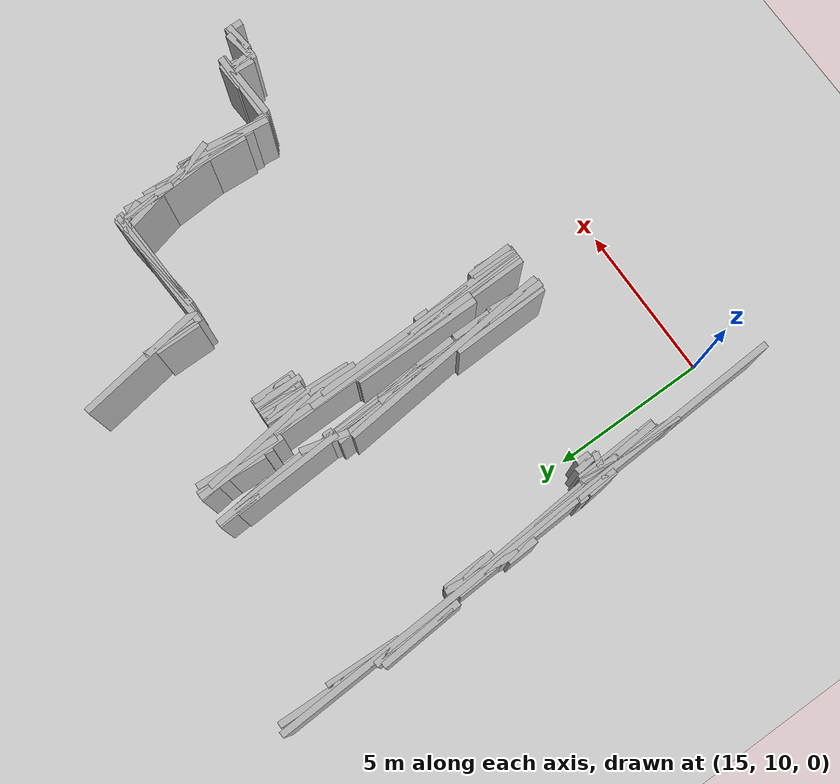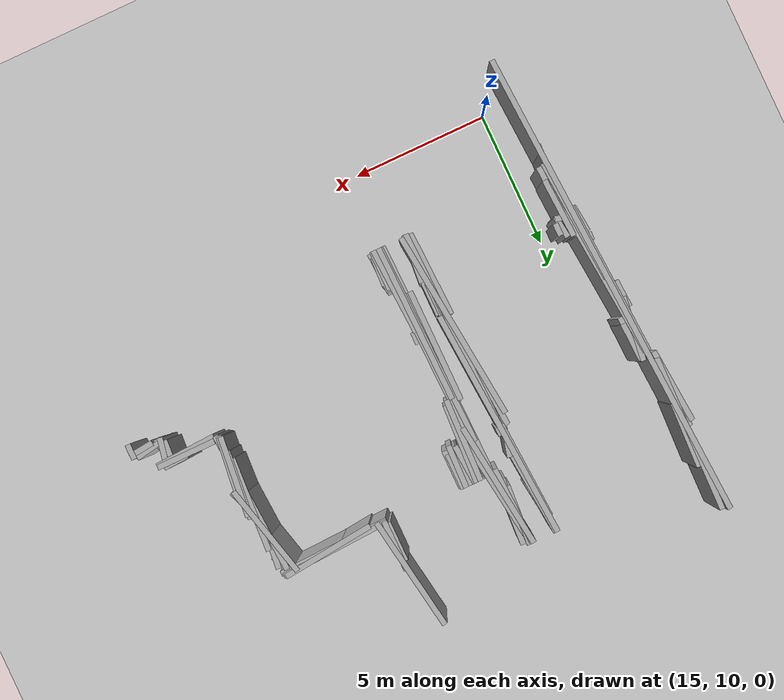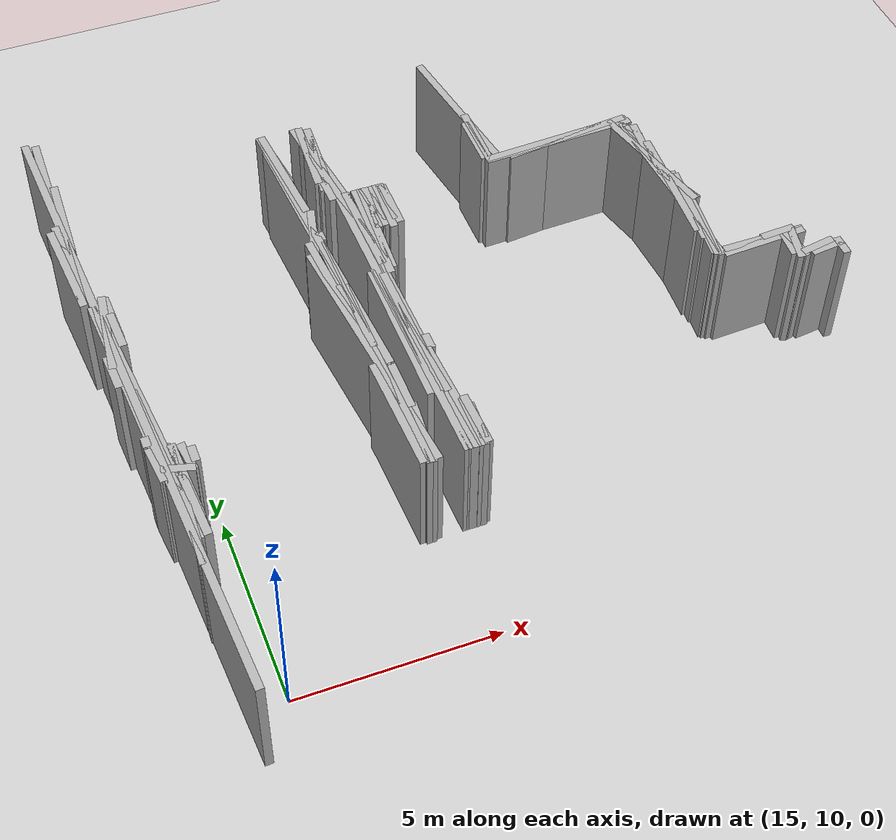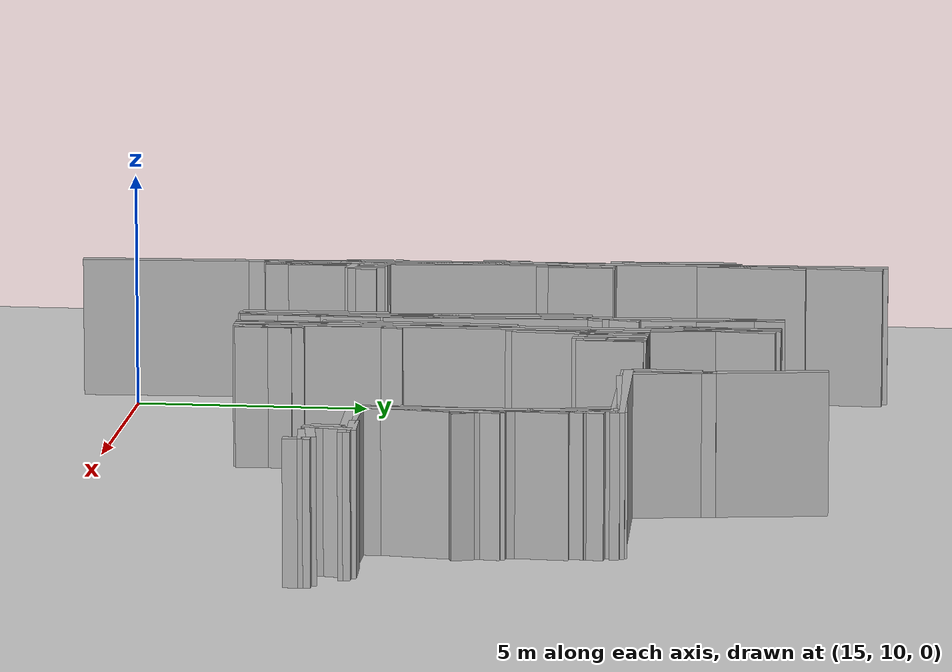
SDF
<sdf version="1.6">
 <world name="aboureyhan">
  <model name="ground_plane">
   <static>true</static>
   <link name="link">
    <collision name="collision">
     <geometry><plane><normal>0 0 1</normal><size>100 100</size></plane></geometry>
    </collision>
    <visual name="visual">
     <geometry><plane><normal>0 0 1</normal><size>500 500</size></plane></geometry>
     <material>
      <ambient>0.8 0.8 0.8 1</ambient>
      <diffuse>0.8 0.8 0.8 1</diffuse>
      <specular>0.8 0.8 0.8 1</specular>
     </material>
    </visual>
   </link>
  </model>
  <model name="wall_7">
   <static>true</static>
   <pose>13.700000000000001 17.4 1.5 0 0 -1.5191182423124665</pose>
   <link name="link">
    <collision name="collision">
     <geometry><box><size>17.423260314877915 0.2 3.0</size></box></geometry>
    </collision>
    <visual name="visual">
     <geometry><box><size>17.423260314877915 0.2 3.0</size></box></geometry>
     <material><ambient>0.5 0.5 0.5 1</ambient><diffuse>0.7 0.7 0.7 1</diffuse></material>
    </visual>
   </link>
  </model>
  <model name="wall_23">
   <static>true</static>
   <pose>14.200000000000001 14.275000000000002 1.5 0 0 -1.5243181954438947</pose>
   <link name="link">
    <collision name="collision"><geometry><box><size>2.152324325003087 0.2 3.0</size></box></geometry></collision>
    <visual name="visual">
     <geometry><box><size>2.152324325003087 0.2 3.0</size></box></geometry>
     <material><ambient>0.5 0.5 0.5 1</ambient><diffuse>0.7 0.7 0.7 1</diffuse></material>
    </visual>
   </link>
  </model>
  <model name="wall_43">
   <static>true</static>
   <pose>19.200000000000003 16.375 1.5 0 0 -1.4704154237119258</pose>
   <link name="link">
    <collision name="collision"><geometry><box><size>6.98516284706377 0.2 3.0</size></box></geometry></collision>
    <visual name="visual">
     <geometry><box><size>6.98516284706377 0.2 3.0</size></box></geometry>
     <material><ambient>0.5 0.5 0.5 1</ambient><diffuse>0.7 0.7 0.7 1</diffuse></material>
    </visual>
   </link>
  </model>
  <model name="wall_60">
   <static>true</static>
   <pose>20.125 22.0 1.5 0 0 -1.4517960334121165</pose>
   <link name="link">
    <collision name="collision"><geometry><box><size>4.632763753959395 0.2 3.0</size></box></geometry></collision>
    <visual name="visual">
     <geometry><box><size>4.632763753959395 0.2 3.0</size></box></geometry>
     <material><ambient>0.5 0.5 0.5 1</ambient><diffuse>0.7 0.7 0.7 1</diffuse></material>
    </visual>
   </link>
  </model>
  <model name="wall_64">
   <static>true</static>
   <pose>13.875000000000002 19.5 1.5 0 0 -1.5350972141155723</pose>
   <link name="link">
    <collision name="collision">
     <geometry><box><size>1.4008925726121957 0.2 3.0</size></box></geometry>
    </collision>
    <visual name="visual">
     <geometry><box><size>1.4008925726121957 0.2 3.0</size></box></geometry>
     <material><ambient>0.5 0.5 0.5 1</ambient><diffuse>0.7 0.7 0.7 1</diffuse></material>
    </visual>
   </link>
  </model>
  <model name="wall_68">
   <static>true</static>
   <pose>24.125 23.474999999999998 1.5 0 0 -1.415432072943363</pose>
   <link name="link">
    <collision name="collision"><geometry><box><size>4.200595195921644 0.2 3.0</size></box></geometry></collision>
    <visual name="visual">
     <geometry><box><size>4.200595195921644 0.2 3.0</size></box></geometry>
     <material><ambient>0.5 0.5 0.5 1</ambient><diffuse>0.7 0.7 0.7 1</diffuse></material>
    </visual>
   </link>
  </model>
  <model name="wall_70">
   <static>true</static>
   <pose>14.200000000000001 13.575000000000003 1.5 0 0 -1.5137155443886332</pose>
   <link name="link">
    <collision name="collision">
     <geometry><box><size>1.7528548142958102 0.2 3.0</size></box></geometry>
    </collision>
    <visual name="visual">
     <geometry><box><size>1.7528548142958102 0.2 3.0</size></box></geometry>
     <material><ambient>0.5 0.5 0.5 1</ambient><diffuse>0.7 0.7 0.7 1</diffuse></material>
    </visual>
   </link>
  </model>
  <model name="wall_71">
   <static>true</static>
   <pose>20.05 16.75 1.5 0 0 1.5707963267948966</pose>
   <link name="link">
    <collision name="collision"><geometry><box><size>4.099999999999994 0.2 3.0</size></box></geometry></collision>
    <visual name="visual">
     <geometry><box><size>4.099999999999994 0.2 3.0</size></box></geometry>
     <material><ambient>0.5 0.5 0.5 1</ambient><diffuse>0.7 0.7 0.7 1</diffuse></material>
    </visual>
   </link>
  </model>
  <model name="wall_74">
   <static>true</static>
   <pose>20.25 20.95 1.5 0 0 -1.5707963267948966</pose>
   <link name="link">
    <collision name="collision">
     <geometry><box><size>1.3000000000000043 0.2 3.0</size></box></geometry>
    </collision>
    <visual name="visual">
     <geometry><box><size>1.3000000000000043 0.2 3.0</size></box></geometry>
     <material><ambient>0.5 0.5 0.5 1</ambient><diffuse>0.7 0.7 0.7 1</diffuse></material>
    </visual>
   </link>
  </model>
  <model name="wall_75">
   <static>true</static>
   <pose>19.225 20.099999999999998 1.5 0 0 -1.5054134647160544</pose>
   <link name="link">
    <collision name="collision"><geometry><box><size>8.417986695166485 0.2 3.0</size></box></geometry></collision>
    <visual name="visual">
     <geometry><box><size>8.417986695166485 0.2 3.0</size></box></geometry>
     <material><ambient>0.5 0.5 0.5 1</ambient><diffuse>0.7 0.7 0.7 1</diffuse></material>
    </visual>
   </link>
  </model>
  <model name="wall_104">
   <static>true</static>
   <pose>20.35 15.774999999999999 1.5 0 0 -1.5534067755055658</pose>
   <link name="link">
    <collision name="collision">
     <geometry><box><size>5.7508694994757095 0.2 3.0</size></box></geometry>
    </collision>
    <visual name="visual">
     <geometry><box><size>5.7508694994757095 0.2 3.0</size></box></geometry>
     <material><ambient>0.5 0.5 0.5 1</ambient><diffuse>0.7 0.7 0.7 1</diffuse></material>
    </visual>
   </link>
  </model>
  <model name="wall_111">
   <static>true</static>
   <pose>28.025000000000002 20.05 1.5 0 0 -1.3258176636680319</pose>
   <link name="link">
    <collision name="collision"><geometry><box><size>3.50463978177501 0.2 3.0</size></box></geometry></collision>
    <visual name="visual">
     <geometry><box><size>3.50463978177501 0.2 3.0</size></box></geometry>
     <material><ambient>0.5 0.5 0.5 1</ambient><diffuse>0.7 0.7 0.7 1</diffuse></material>
    </visual>
   </link>
  </model>
  <model name="wall_120">
   <static>true</static>
   <pose>20.525000000000002 14.474999999999998 1.5 0 0 -1.5232132235179137</pose>
   <link name="link">
    <collision name="collision">
     <geometry><box><size>3.1535694062442943 0.2 3.0</size></box></geometry>
    </collision>
    <visual name="visual">
     <geometry><box><size>3.1535694062442943 0.2 3.0</size></box></geometry>
     <material><ambient>0.5 0.5 0.5 1</ambient><diffuse>0.7 0.7 0.7 1</diffuse></material>
    </visual>
   </link>
  </model>
  <model name="wall_136">
   <static>true</static>
   <pose>20.275000000000002 16.599999999999998 1.5 0 0 -1.5505288320826753</pose>
   <link name="link">
    <collision name="collision"><geometry><box><size>7.401520114138715 0.2 3.0</size></box></geometry></collision>
    <visual name="visual">
     <geometry><box><size>7.401520114138715 0.2 3.0</size></box></geometry>
     <material><ambient>0.5 0.5 0.5 1</ambient><diffuse>0.7 0.7 0.7 1</diffuse></material>
    </visual>
   </link>
  </model>
  <model name="wall_137">
   <static>true</static>
   <pose>13.65 17.2 1.5 0 0 -1.5172760583355813</pose>
   <link name="link">
    <collision name="collision"><geometry><box><size>5.608029957123983 0.2 3.0</size></box></geometry></collision>
    <visual name="visual">
     <geometry><box><size>5.608029957123983 0.2 3.0</size></box></geometry>
     <material><ambient>0.5 0.5 0.5 1</ambient><diffuse>0.7 0.7 0.7 1</diffuse></material>
    </visual>
   </link>
  </model>
  <model name="wall_141">
   <static>true</static>
   <pose>13.425 23.175 1.5 0 0 1.5442538890434996</pose>
   <link name="link">
    <collision name="collision"><geometry><box><size>5.651990799709425 0.2 3.0</size></box></geometry></collision>
    <visual name="visual">
     <geometry><box><size>5.651990799709425 0.2 3.0</size></box></geometry>
     <material><ambient>0.5 0.5 0.5 1</ambient><diffuse>0.7 0.7 0.7 1</diffuse></material>
    </visual>
   </link>
  </model>
  <model name="wall_153">
   <static>true</static>
   <pose>28.200000000000003 17.900000000000002 1.5 0 0 1.4677147182721972</pose>
   <link name="link">
    <collision name="collision">
     <geometry><box><size>2.9154759474226486 0.2 3.0</size></box></geometry>
    </collision>
    <visual name="visual">
     <geometry><box><size>2.9154759474226486 0.2 3.0</size></box></geometry>
     <material><ambient>0.5 0.5 0.5 1</ambient><diffuse>0.7 0.7 0.7 1</diffuse></material>
    </visual>
   </link>
  </model>
  <model name="wall_165">
   <static>true</static>
   <pose>19.275000000000002 16.5 1.5 0 0 -1.5502512727614965</pose>
   <link name="link">
    <collision name="collision"><geometry><box><size>7.301540933255113 0.2 3.0</size></box></geometry></collision>
    <visual name="visual">
     <geometry><box><size>7.301540933255113 0.2 3.0</size></box></geometry>
     <material><ambient>0.5 0.5 0.5 1</ambient><diffuse>0.7 0.7 0.7 1</diffuse></material>
    </visual>
   </link>
  </model>
  <model name="wall_169">
   <static>true</static>
   <pose>19.950000000000003 22.875 1.5 0 0 -1.5357229962616719</pose>
   <link name="link">
    <collision name="collision">
     <geometry><box><size>2.8517538463198338 0.2 3.0</size></box></geometry>
    </collision>
    <visual name="visual">
     <geometry><box><size>2.8517538463198338 0.2 3.0</size></box></geometry>
     <material><ambient>0.5 0.5 0.5 1</ambient><diffuse>0.7 0.7 0.7 1</diffuse></material>
    </visual>
   </link>
  </model>
  <model name="wall_201">
   <static>true</static>
   <pose>20.85 20.875 1.5 0 0 -1.501939837493851</pose>
   <link name="link">
    <collision name="collision"><geometry><box><size>1.453444185374866 0.2 3.0</size></box></geometry></collision>
    <visual name="visual">
     <geometry><box><size>1.453444185374866 0.2 3.0</size></box></geometry>
     <material><ambient>0.5 0.5 0.5 1</ambient><diffuse>0.7 0.7 0.7 1</diffuse></material>
    </visual>
   </link>
  </model>
  <model name="wall_209">
   <static>true</static>
   <pose>13.55 23.174999999999997 1.5 0 0 1.5282687921751117</pose>
   <link name="link">
    <collision name="collision">
     <geometry><box><size>2.3521266972678094 0.2 3.0</size></box></geometry>
    </collision>
    <visual name="visual">
     <geometry><box><size>2.3521266972678094 0.2 3.0</size></box></geometry>
     <material><ambient>0.5 0.5 0.5 1</ambient><diffuse>0.7 0.7 0.7 1</diffuse></material>
    </visual>
   </link>
  </model>
  <model name="wall_225">
   <static>true</static>
   <pose>28.175000000000004 18.225 1.5 0 0 1.4691074750318196</pose>
   <link name="link">
    <collision name="collision"><geometry><box><size>2.462722071204953 0.2 3.0</size></box></geometry></collision>
    <visual name="visual">
     <geometry><box><size>2.462722071204953 0.2 3.0</size></box></geometry>
     <material><ambient>0.5 0.5 0.5 1</ambient><diffuse>0.7 0.7 0.7 1</diffuse></material>
    </visual>
   </link>
  </model>
  <model name="wall_231">
   <static>true</static>
   <pose>20.55 20.1 1.5 0 0 1.537475330916649</pose>
   <link name="link">
    <collision name="collision">
     <geometry><box><size>3.0016662039607267 0.2 3.0</size></box></geometry>
    </collision>
    <visual name="visual">
     <geometry><box><size>3.0016662039607267 0.2 3.0</size></box></geometry>
     <material><ambient>0.5 0.5 0.5 1</ambient><diffuse>0.7 0.7 0.7 1</diffuse></material>
    </visual>
   </link>
  </model>
  <model name="wall_238">
   <static>true</static>
   <pose>20.650000000000002 13.625 1.5 0 0 1.5707963267948966</pose>
   <link name="link">
    <collision name="collision">
     <geometry><box><size>1.4500000000000028 0.2 3.0</size></box></geometry>
    </collision>
    <visual name="visual">
     <geometry><box><size>1.4500000000000028 0.2 3.0</size></box></geometry>
     <material><ambient>0.5 0.5 0.5 1</ambient><diffuse>0.7 0.7 0.7 1</diffuse></material>
    </visual>
   </link>
  </model>
  <model name="wall_240">
   <static>true</static>
   <pose>19.150000000000002 14.45 1.5 0 0 -1.5385494443596424</pose>
   <link name="link">
    <collision name="collision"><geometry><box><size>3.101612483854166 0.2 3.0</size></box></geometry></collision>
    <visual name="visual">
     <geometry><box><size>3.101612483854166 0.2 3.0</size></box></geometry>
     <material><ambient>0.5 0.5 0.5 1</ambient><diffuse>0.7 0.7 0.7 1</diffuse></material>
    </visual>
   </link>
  </model>
  <model name="wall_249">
   <static>true</static>
   <pose>13.9 14.899999999999999 1.5 0 0 -1.5042281630190726</pose>
   <link name="link">
    <collision name="collision"><geometry><box><size>4.509988913511872 0.2 3.0</size></box></geometry></collision>
    <visual name="visual">
     <geometry><box><size>4.509988913511872 0.2 3.0</size></box></geometry>
     <material><ambient>0.5 0.5 0.5 1</ambient><diffuse>0.7 0.7 0.7 1</diffuse></material>
    </visual>
   </link>
  </model>
  <model name="wall_251">
   <static>true</static>
   <pose>13.900000000000002 16.35 1.5 0 0 -1.488788881268711</pose>
   <link name="link">
    <collision name="collision"><geometry><box><size>7.324616030891992 0.2 3.0</size></box></geometry></collision>
    <visual name="visual">
     <geometry><box><size>7.324616030891992 0.2 3.0</size></box></geometry>
     <material><ambient>0.5 0.5 0.5 1</ambient><diffuse>0.7 0.7 0.7 1</diffuse></material>
    </visual>
   </link>
  </model>
  <model name="wall_283">
   <static>true</static>
   <pose>26.375000000000004 21.575 1.5 0 0 0.10409993810959972</pose>
   <link name="link">
    <collision name="collision">
     <geometry><box><size>3.3682339586198595 0.2 3.0</size></box></geometry>
    </collision>
    <visual name="visual">
     <geometry><box><size>3.3682339586198595 0.2 3.0</size></box></geometry>
     <material><ambient>0.5 0.5 0.5 1</ambient><diffuse>0.7 0.7 0.7 1</diffuse></material>
    </visual>
   </link>
  </model>
  <model name="wall_285">
   <static>true</static>
   <pose>28.1 19.0 1.5 0 0 1.5120405040791731</pose>
   <link name="link">
    <collision name="collision">
     <geometry><box><size>3.4058772731852858 0.2 3.0</size></box></geometry>
    </collision>
    <visual name="visual">
     <geometry><box><size>3.4058772731852858 0.2 3.0</size></box></geometry>
     <material><ambient>0.5 0.5 0.5 1</ambient><diffuse>0.7 0.7 0.7 1</diffuse></material>
    </visual>
   </link>
  </model>
  <model name="wall_308">
   <static>true</static>
   <pose>13.475000000000001 17.85 1.5 0 0 -1.5208379310729567</pose>
   <link name="link">
    <collision name="collision"><geometry><box><size>1.001249219725039 0.2 3.0</size></box></geometry></collision>
    <visual name="visual">
     <geometry><box><size>1.001249219725039 0.2 3.0</size></box></geometry>
     <material><ambient>0.5 0.5 0.5 1</ambient><diffuse>0.7 0.7 0.7 1</diffuse></material>
    </visual>
   </link>
  </model>
  <model name="wall_314">
   <static>true</static>
   <pose>21.125 20.825 1.5 0 0 1.5385494443596424</pose>
   <link name="link">
    <collision name="collision">
     <geometry><box><size>1.5508062419270865 0.2 3.0</size></box></geometry>
    </collision>
    <visual name="visual">
     <geometry><box><size>1.5508062419270865 0.2 3.0</size></box></geometry>
     <material><ambient>0.5 0.5 0.5 1</ambient><diffuse>0.7 0.7 0.7 1</diffuse></material>
    </visual>
   </link>
  </model>
  <model name="wall_315">
   <static>true</static>
   <pose>19.925 23.224999999999998 1.5 0 0 1.5011417530663291</pose>
   <link name="link">
    <collision name="collision"><geometry><box><size>2.155226206225229 0.2 3.0</size></box></geometry></collision>
    <visual name="visual">
     <geometry><box><size>2.155226206225229 0.2 3.0</size></box></geometry>
     <material><ambient>0.5 0.5 0.5 1</ambient><diffuse>0.7 0.7 0.7 1</diffuse></material>
    </visual>
   </link>
  </model>
  <model name="wall_343">
   <static>true</static>
   <pose>28.225 17.425 1.5 0 0 1.4494443262241332</pose>
   <link name="link">
    <collision name="collision">
     <geometry><box><size>2.0651876428063427 0.2 3.0</size></box></geometry>
    </collision>
    <visual name="visual">
     <geometry><box><size>2.0651876428063427 0.2 3.0</size></box></geometry>
     <material><ambient>0.5 0.5 0.5 1</ambient><diffuse>0.7 0.7 0.7 1</diffuse></material>
    </visual>
   </link>
  </model>
  <model name="wall_347">
   <static>true</static>
   <pose>19.125 22.799999999999997 1.5 0 0 -1.4876550949064553</pose>
   <link name="link">
    <collision name="collision"><geometry><box><size>3.010398644698074 0.2 3.0</size></box></geometry></collision>
    <visual name="visual">
     <geometry><box><size>3.010398644698074 0.2 3.0</size></box></geometry>
     <material><ambient>0.5 0.5 0.5 1</ambient><diffuse>0.7 0.7 0.7 1</diffuse></material>
    </visual>
   </link>
  </model>
  <model name="wall_362">
   <static>true</static>
   <pose>19.475 13.725000000000001 1.5 0 0 1.4852910331166929</pose>
   <link name="link">
    <collision name="collision">
     <geometry><box><size>1.7564168070250294 0.2 3.0</size></box></geometry>
    </collision>
    <visual name="visual">
     <geometry><box><size>1.7564168070250294 0.2 3.0</size></box></geometry>
     <material><ambient>0.5 0.5 0.5 1</ambient><diffuse>0.7 0.7 0.7 1</diffuse></material>
    </visual>
   </link>
  </model>
  <model name="wall_367">
   <static>true</static>
   <pose>19.175 20.575 1.5 0 0 1.3339475658479747</pose>
   <link name="link">
    <collision name="collision"><geometry><box><size>1.491643389017626 0.2 3.0</size></box></geometry></collision>
    <visual name="visual">
     <geometry><box><size>1.491643389017626 0.2 3.0</size></box></geometry>
     <material><ambient>0.5 0.5 0.5 1</ambient><diffuse>0.7 0.7 0.7 1</diffuse></material>
    </visual>
   </link>
  </model>
  <model name="wall_381">
   <static>true</static>
   <pose>19.050000000000004 21.925 1.5 0 0 -1.5145177905061349</pose>
   <link name="link">
    <collision name="collision"><geometry><box><size>3.555629339512209 0.2 3.0</size></box></geometry></collision>
    <visual name="visual">
     <geometry><box><size>3.555629339512209 0.2 3.0</size></box></geometry>
     <material><ambient>0.5 0.5 0.5 1</ambient><diffuse>0.7 0.7 0.7 1</diffuse></material>
    </visual>
   </link>
  </model>
  <model name="wall_385">
   <static>true</static>
   <pose>21.25 20.95 1.5 0 0 1.5707963267948966</pose>
   <link name="link">
    <collision name="collision">
     <geometry><box><size>1.3000000000000043 0.2 3.0</size></box></geometry>
    </collision>
    <visual name="visual">
     <geometry><box><size>1.3000000000000043 0.2 3.0</size></box></geometry>
     <material><ambient>0.5 0.5 0.5 1</ambient><diffuse>0.7 0.7 0.7 1</diffuse></material>
    </visual>
   </link>
  </model>
  <model name="wall_405">
   <static>true</static>
   <pose>20.25 22.025 1.5 0 0 -1.4382447944982226</pose>
   <link name="link">
    <collision name="collision"><geometry><box><size>3.783186487605389 0.2 3.0</size></box></geometry></collision>
    <visual name="visual">
     <geometry><box><size>3.783186487605389 0.2 3.0</size></box></geometry>
     <material><ambient>0.5 0.5 0.5 1</ambient><diffuse>0.7 0.7 0.7 1</diffuse></material>
    </visual>
   </link>
  </model>
  <model name="wall_417">
   <static>true</static>
   <pose>24.200000000000003 22.375 1.5 0 0 1.5707963267948966</pose>
   <link name="link">
    <collision name="collision">
     <geometry><box><size>1.8499999999999943 0.2 3.0</size></box></geometry>
    </collision>
    <visual name="visual">
     <geometry><box><size>1.8499999999999943 0.2 3.0</size></box></geometry>
     <material><ambient>0.5 0.5 0.5 1</ambient><diffuse>0.7 0.7 0.7 1</diffuse></material>
    </visual>
   </link>
  </model>
  <model name="wall_419">
   <static>true</static>
   <pose>26.1 21.6 1.5 0 0 0.04995839572194347</pose>
   <link name="link">
    <collision name="collision"><geometry><box><size>4.004996878900157 0.2 3.0</size></box></geometry></collision>
    <visual name="visual">
     <geometry><box><size>4.004996878900157 0.2 3.0</size></box></geometry>
     <material><ambient>0.5 0.5 0.5 1</ambient><diffuse>0.7 0.7 0.7 1</diffuse></material>
    </visual>
   </link>
  </model>
  <model name="wall_421">
   <static>true</static>
   <pose>20.675 20.175 1.5 0 0 1.5182132651839555</pose>
   <link name="link">
    <collision name="collision">
     <geometry><box><size>2.8539446385660683 0.2 3.0</size></box></geometry>
    </collision>
    <visual name="visual">
     <geometry><box><size>2.8539446385660683 0.2 3.0</size></box></geometry>
     <material><ambient>0.5 0.5 0.5 1</ambient><diffuse>0.7 0.7 0.7 1</diffuse></material>
    </visual>
   </link>
  </model>
  <model name="wall_422">
   <static>true</static>
   <pose>28.075 20.625 1.5 0 0 1.4743225516123104</pose>
   <link name="link">
    <collision name="collision">
     <geometry><box><size>1.5572411502397407 0.2 3.0</size></box></geometry>
    </collision>
    <visual name="visual">
     <geometry><box><size>1.5572411502397407 0.2 3.0</size></box></geometry>
     <material><ambient>0.5 0.5 0.5 1</ambient><diffuse>0.7 0.7 0.7 1</diffuse></material>
    </visual>
   </link>
  </model>
  <model name="wall_434">
   <static>true</static>
   <pose>19.050000000000004 18.675 1.5 0 0 -1.507389374828065</pose>
   <link name="link">
    <collision name="collision">
     <geometry><box><size>3.1563428204173243 0.2 3.0</size></box></geometry>
    </collision>
    <visual name="visual">
     <geometry><box><size>3.1563428204173243 0.2 3.0</size></box></geometry>
     <material><ambient>0.5 0.5 0.5 1</ambient><diffuse>0.7 0.7 0.7 1</diffuse></material>
    </visual>
   </link>
  </model>
  <model name="wall_453">
   <static>true</static>
   <pose>19.300000000000004 17.9 1.5 0 0 -1.438244794498223</pose>
   <link name="link">
    <collision name="collision">
     <geometry><box><size>1.5132745950421556 0.2 3.0</size></box></geometry>
    </collision>
    <visual name="visual">
     <geometry><box><size>1.5132745950421556 0.2 3.0</size></box></geometry>
     <material><ambient>0.5 0.5 0.5 1</ambient><diffuse>0.7 0.7 0.7 1</diffuse></material>
    </visual>
   </link>
  </model>
  <model name="wall_465">
   <static>true</static>
   <pose>14.55 14.925 1.5 0 0 -1.5707963267948966</pose>
   <link name="link">
    <collision name="collision">
     <geometry><box><size>0.44999999999999574 0.2 3.0</size></box></geometry>
    </collision>
    <visual name="visual">
     <geometry><box><size>0.44999999999999574 0.2 3.0</size></box></geometry>
     <material><ambient>0.5 0.5 0.5 1</ambient><diffuse>0.7 0.7 0.7 1</diffuse></material>
    </visual>
   </link>
  </model>
  <model name="wall_481">
   <static>true</static>
   <pose>20.200000000000003 18.150000000000002 1.5 0 0 -1.5563045877293968</pose>
   <link name="link">
    <collision name="collision">
     <geometry><box><size>6.9007245996344455 0.2 3.0</size></box></geometry>
    </collision>
    <visual name="visual">
     <geometry><box><size>6.9007245996344455 0.2 3.0</size></box></geometry>
     <material><ambient>0.5 0.5 0.5 1</ambient><diffuse>0.7 0.7 0.7 1</diffuse></material>
    </visual>
   </link>
  </model>
  <model name="wall_502">
   <static>true</static>
   <pose>20.75 20.875 1.5 0 0 -1.5019398374938535</pose>
   <link name="link">
    <collision name="collision"><geometry><box><size>1.453444185374866 0.2 3.0</size></box></geometry></collision>
    <visual name="visual">
     <geometry><box><size>1.453444185374866 0.2 3.0</size></box></geometry>
     <material><ambient>0.5 0.5 0.5 1</ambient><diffuse>0.7 0.7 0.7 1</diffuse></material>
    </visual>
   </link>
  </model>
  <model name="wall_504">
   <static>true</static>
   <pose>30.05 16.1 1.5 0 0 1.37340076694502</pose>
   <link name="link">
    <collision name="collision">
     <geometry><box><size>1.0198039027185561 0.2 3.0</size></box></geometry>
    </collision>
    <visual name="visual">
     <geometry><box><size>1.0198039027185561 0.2 3.0</size></box></geometry>
     <material><ambient>0.5 0.5 0.5 1</ambient><diffuse>0.7 0.7 0.7 1</diffuse></material>
    </visual>
   </link>
  </model>
  <model name="wall_509">
   <static>true</static>
   <pose>20.950000000000003 20.875 1.5 0 0 1.5707963267948966</pose>
   <link name="link">
    <collision name="collision">
     <geometry><box><size>1.4500000000000028 0.2 3.0</size></box></geometry>
    </collision>
    <visual name="visual">
     <geometry><box><size>1.4500000000000028 0.2 3.0</size></box></geometry>
     <material><ambient>0.5 0.5 0.5 1</ambient><diffuse>0.7 0.7 0.7 1</diffuse></material>
    </visual>
   </link>
  </model>
  <model name="wall_511">
   <static>true</static>
   <pose>29.875 16.175 1.5 0 0 1.5120405040791773</pose>
   <link name="link">
    <collision name="collision">
     <geometry><box><size>0.8514693182963213 0.2 3.0</size></box></geometry>
    </collision>
    <visual name="visual">
     <geometry><box><size>0.8514693182963213 0.2 3.0</size></box></geometry>
     <material><ambient>0.5 0.5 0.5 1</ambient><diffuse>0.7 0.7 0.7 1</diffuse></material>
    </visual>
   </link>
  </model>
  <model name="wall_515">
   <static>true</static>
   <pose>13.250000000000002 21.45 1.5 0 0 -1.4968572891369565</pose>
   <link name="link">
    <collision name="collision">
     <geometry><box><size>2.7073972741361723 0.2 3.0</size></box></geometry>
    </collision>
    <visual name="visual">
     <geometry><box><size>2.7073972741361723 0.2 3.0</size></box></geometry>
     <material><ambient>0.5 0.5 0.5 1</ambient><diffuse>0.7 0.7 0.7 1</diffuse></material>
    </visual>
   </link>
  </model>
  <model name="wall_527">
   <static>true</static>
   <pose>13.700000000000001 14.899999999999999 1.5 0 0 -1.4711276743037367</pose>
   <link name="link">
    <collision name="collision">
     <geometry><box><size>1.0049875621120887 0.2 3.0</size></box></geometry>
    </collision>
    <visual name="visual">
     <geometry><box><size>1.0049875621120887 0.2 3.0</size></box></geometry>
     <material><ambient>0.5 0.5 0.5 1</ambient><diffuse>0.7 0.7 0.7 1</diffuse></material>
    </visual>
   </link>
  </model>
  <model name="wall_530">
   <static>true</static>
   <pose>29.375000000000004 16.5 1.5 0 0 0.0</pose>
   <link name="link">
    <collision name="collision">
     <geometry><box><size>2.1499999999999986 0.2 3.0</size></box></geometry>
    </collision>
    <visual name="visual">
     <geometry><box><size>2.1499999999999986 0.2 3.0</size></box></geometry>
     <material><ambient>0.5 0.5 0.5 1</ambient><diffuse>0.7 0.7 0.7 1</diffuse></material>
    </visual>
   </link>
  </model>
  <model name="wall_547">
   <static>true</static>
   <pose>14.125 14.649999999999999 1.5 0 0 -0.2606023917473445</pose>
   <link name="link">
    <collision name="collision">
     <geometry><box><size>0.7762087348130019 0.2 3.0</size></box></geometry>
    </collision>
    <visual name="visual">
     <geometry><box><size>0.7762087348130019 0.2 3.0</size></box></geometry>
     <material><ambient>0.5 0.5 0.5 1</ambient><diffuse>0.7 0.7 0.7 1</diffuse></material>
    </visual>
   </link>
  </model>
  <model name="wall_566">
   <static>true</static>
   <pose>20.200000000000003 15.875 1.5 0 0 -1.553991186279855</pose>
   <link name="link">
    <collision name="collision"><geometry><box><size>5.950840276801254 0.2 3.0</size></box></geometry></collision>
    <visual name="visual">
     <geometry><box><size>5.950840276801254 0.2 3.0</size></box></geometry>
     <material><ambient>0.5 0.5 0.5 1</ambient><diffuse>0.7 0.7 0.7 1</diffuse></material>
    </visual>
   </link>
  </model>
  <model name="wall_572">
   <static>true</static>
   <pose>19.400000000000002 15.375 1.5 0 0 1.5707963267948966</pose>
   <link name="link">
    <collision name="collision">
     <geometry><box><size>1.3499999999999943 0.2 3.0</size></box></geometry>
    </collision>
    <visual name="visual">
     <geometry><box><size>1.3499999999999943 0.2 3.0</size></box></geometry>
     <material><ambient>0.5 0.5 0.5 1</ambient><diffuse>0.7 0.7 0.7 1</diffuse></material>
    </visual>
   </link>
  </model>
  <model name="wall_601">
   <static>true</static>
   <pose>20.55 16.225 1.5 0 0 -1.5707963267948966</pose>
   <link name="link">
    <collision name="collision">
     <geometry><box><size>0.45000000000000284 0.2 3.0</size></box></geometry>
    </collision>
    <visual name="visual">
     <geometry><box><size>0.45000000000000284 0.2 3.0</size></box></geometry>
     <material><ambient>0.5 0.5 0.5 1</ambient><diffuse>0.7 0.7 0.7 1</diffuse></material>
    </visual>
   </link>
  </model>
  <model name="wall_625">
   <static>true</static>
   <pose>28.05 18.95 1.5 0 0 -1.5131678993174218</pose>
   <link name="link">
    <collision name="collision"><geometry><box><size>5.208646657242163 0.2 3.0</size></box></geometry></collision>
    <visual name="visual">
     <geometry><box><size>5.208646657242163 0.2 3.0</size></box></geometry>
     <material><ambient>0.5 0.5 0.5 1</ambient><diffuse>0.7 0.7 0.7 1</diffuse></material>
    </visual>
   </link>
  </model>
  <model name="wall_629">
   <static>true</static>
   <pose>20.400000000000002 17.25 1.5 0 0 -1.5515679276951893</pose>
   <link name="link">
    <collision name="collision"><geometry><box><size>5.20096144957834 0.2 3.0</size></box></geometry></collision>
    <visual name="visual">
     <geometry><box><size>5.20096144957834 0.2 3.0</size></box></geometry>
     <material><ambient>0.5 0.5 0.5 1</ambient><diffuse>0.7 0.7 0.7 1</diffuse></material>
    </visual>
   </link>
  </model>
  <model name="wall_642">
   <static>true</static>
   <pose>28.275000000000002 18.975 1.5 0 0 -1.2252407462131876</pose>
   <link name="link">
    <collision name="collision">
     <geometry><box><size>1.3285330255586407 0.2 3.0</size></box></geometry>
    </collision>
    <visual name="visual">
     <geometry><box><size>1.3285330255586407 0.2 3.0</size></box></geometry>
     <material><ambient>0.5 0.5 0.5 1</ambient><diffuse>0.7 0.7 0.7 1</diffuse></material>
    </visual>
   </link>
  </model>
  <model name="wall_669">
   <static>true</static>
   <pose>13.350000000000001 22.3 1.5 0 0 -1.4940244355251178</pose>
   <link name="link">
    <collision name="collision"><geometry><box><size>1.303840481040534 0.2 3.0</size></box></geometry></collision>
    <visual name="visual">
     <geometry><box><size>1.303840481040534 0.2 3.0</size></box></geometry>
     <material><ambient>0.5 0.5 0.5 1</ambient><diffuse>0.7 0.7 0.7 1</diffuse></material>
    </visual>
   </link>
  </model>
  <model name="wall_683">
   <static>true</static>
   <pose>14.400000000000002 14.899999999999999 1.5 0 0 -1.446441332248133</pose>
   <link name="link">
    <collision name="collision">
     <geometry><box><size>0.8062257748298522 0.2 3.0</size></box></geometry>
    </collision>
    <visual name="visual">
     <geometry><box><size>0.8062257748298522 0.2 3.0</size></box></geometry>
     <material><ambient>0.5 0.5 0.5 1</ambient><diffuse>0.7 0.7 0.7 1</diffuse></material>
    </visual>
   </link>
  </model>
  <model name="wall_729">
   <static>true</static>
   <pose>19.3 17.55 1.5 0 0 1.5707963267948966</pose>
   <link name="link">
    <collision name="collision">
     <geometry><box><size>2.1000000000000014 0.2 3.0</size></box></geometry>
    </collision>
    <visual name="visual">
     <geometry><box><size>2.1000000000000014 0.2 3.0</size></box></geometry>
     <material><ambient>0.5 0.5 0.5 1</ambient><diffuse>0.7 0.7 0.7 1</diffuse></material>
    </visual>
   </link>
  </model>
  <model name="wall_765">
   <static>true</static>
   <pose>20.725 13.625 1.5 0 0 1.5232132235179159</pose>
   <link name="link">
    <collision name="collision"><geometry><box><size>1.051189802081429 0.2 3.0</size></box></geometry></collision>
    <visual name="visual">
     <geometry><box><size>1.051189802081429 0.2 3.0</size></box></geometry>
     <material><ambient>0.5 0.5 0.5 1</ambient><diffuse>0.7 0.7 0.7 1</diffuse></material>
    </visual>
   </link>
  </model>
  <model name="wall_784">
   <static>true</static>
   <pose>26.125 21.525000000000002 1.5 0 0 0.037020115873929706</pose>
   <link name="link">
    <collision name="collision"><geometry><box><size>4.052776825831886 0.2 3.0</size></box></geometry></collision>
    <visual name="visual">
     <geometry><box><size>4.052776825831886 0.2 3.0</size></box></geometry>
     <material><ambient>0.5 0.5 0.5 1</ambient><diffuse>0.7 0.7 0.7 1</diffuse></material>
    </visual>
   </link>
  </model>
  <model name="wall_799">
   <static>true</static>
   <pose>20.125 22.900000000000002 1.5 0 0 1.5131678993174218</pose>
   <link name="link">
    <collision name="collision"><geometry><box><size>2.604323328621085 0.2 3.0</size></box></geometry></collision>
    <visual name="visual">
     <geometry><box><size>2.604323328621085 0.2 3.0</size></box></geometry>
     <material><ambient>0.5 0.5 0.5 1</ambient><diffuse>0.7 0.7 0.7 1</diffuse></material>
    </visual>
   </link>
  </model>
  <model name="wall_813">
   <static>true</static>
   <pose>20.725 13.675 1.5 0 0 -1.5363272257953904</pose>
   <link name="link">
    <collision name="collision">
     <geometry><box><size>1.4508618128546864 0.2 3.0</size></box></geometry>
    </collision>
    <visual name="visual">
     <geometry><box><size>1.4508618128546864 0.2 3.0</size></box></geometry>
     <material><ambient>0.5 0.5 0.5 1</ambient><diffuse>0.7 0.7 0.7 1</diffuse></material>
    </visual>
   </link>
  </model>
  <model name="wall_818">
   <static>true</static>
   <pose>24.1 22.275 1.5 0 0 1.5707963267948966</pose>
   <link name="link">
    <collision name="collision">
     <geometry><box><size>1.4500000000000028 0.2 3.0</size></box></geometry>
    </collision>
    <visual name="visual">
     <geometry><box><size>1.4500000000000028 0.2 3.0</size></box></geometry>
     <material><ambient>0.5 0.5 0.5 1</ambient><diffuse>0.7 0.7 0.7 1</diffuse></material>
    </visual>
   </link>
  </model>
  <model name="wall_829">
   <static>true</static>
   <pose>20.375 20.275000000000002 1.5 0 0 -1.5519306407732256</pose>
   <link name="link">
    <collision name="collision">
     <geometry><box><size>2.6504716561397133 0.2 3.0</size></box></geometry>
    </collision>
    <visual name="visual">
     <geometry><box><size>2.6504716561397133 0.2 3.0</size></box></geometry>
     <material><ambient>0.5 0.5 0.5 1</ambient><diffuse>0.7 0.7 0.7 1</diffuse></material>
    </visual>
   </link>
  </model>
  <model name="wall_835">
   <static>true</static>
   <pose>28.1 19.974999999999998 1.5 0 0 1.4181469983996398</pose>
   <link name="link">
    <collision name="collision"><geometry><box><size>0.657647321898293 0.2 3.0</size></box></geometry></collision>
    <visual name="visual">
     <geometry><box><size>0.657647321898293 0.2 3.0</size></box></geometry>
     <material><ambient>0.5 0.5 0.5 1</ambient><diffuse>0.7 0.7 0.7 1</diffuse></material>
    </visual>
   </link>
  </model>
  <model name="wall_845">
   <static>true</static>
   <pose>29.35 16.400000000000002 1.5 0 0 0.0454232794215776</pose>
   <link name="link">
    <collision name="collision"><geometry><box><size>2.202271554554527 0.2 3.0</size></box></geometry></collision>
    <visual name="visual">
     <geometry><box><size>2.202271554554527 0.2 3.0</size></box></geometry>
     <material><ambient>0.5 0.5 0.5 1</ambient><diffuse>0.7 0.7 0.7 1</diffuse></material>
    </visual>
   </link>
  </model>
  <model name="wall_846">
   <static>true</static>
   <pose>19.3 20.35 1.5 0 0 1.5707963267948966</pose>
   <link name="link">
    <collision name="collision">
     <geometry><box><size>0.29999999999999716 0.2 3.0</size></box></geometry>
    </collision>
    <visual name="visual">
     <geometry><box><size>0.29999999999999716 0.2 3.0</size></box></geometry>
     <material><ambient>0.5 0.5 0.5 1</ambient><diffuse>0.7 0.7 0.7 1</diffuse></material>
    </visual>
   </link>
  </model>
  <model name="wall_848">
   <static>true</static>
   <pose>13.975000000000001 14.849999999999998 1.5 0 0 1.4352686128093974</pose>
   <link name="link">
    <collision name="collision">
     <geometry><box><size>1.1101801655587271 0.2 3.0</size></box></geometry>
    </collision>
    <visual name="visual">
     <geometry><box><size>1.1101801655587271 0.2 3.0</size></box></geometry>
     <material><ambient>0.5 0.5 0.5 1</ambient><diffuse>0.7 0.7 0.7 1</diffuse></material>
    </visual>
   </link>
  </model>
  <model name="wall_850">
   <static>true</static>
   <pose>13.65 19.1 1.5 0 0 1.4410937896389842</pose>
   <link name="link">
    <collision name="collision">
     <geometry><box><size>2.3194827009486376 0.2 3.0</size></box></geometry>
    </collision>
    <visual name="visual">
     <geometry><box><size>2.3194827009486376 0.2 3.0</size></box></geometry>
     <material><ambient>0.5 0.5 0.5 1</ambient><diffuse>0.7 0.7 0.7 1</diffuse></material>
    </visual>
   </link>
  </model>
  <model name="wall_870">
   <static>true</static>
   <pose>31.050000000000004 15.625 1.5 0 0 -1.5707963267948966</pose>
   <link name="link">
    <collision name="collision">
     <geometry><box><size>0.5499999999999972 0.2 3.0</size></box></geometry>
    </collision>
    <visual name="visual">
     <geometry><box><size>0.5499999999999972 0.2 3.0</size></box></geometry>
     <material><ambient>0.5 0.5 0.5 1</ambient><diffuse>0.7 0.7 0.7 1</diffuse></material>
    </visual>
   </link>
  </model>
  <model name="wall_871">
   <static>true</static>
   <pose>30.700000000000003 15.7 1.5 0 0 0.11065722117389651</pose>
   <link name="link">
    <collision name="collision">
     <geometry><box><size>0.9055385138137475 0.2 3.0</size></box></geometry>
    </collision>
    <visual name="visual">
     <geometry><box><size>0.9055385138137475 0.2 3.0</size></box></geometry>
     <material><ambient>0.5 0.5 0.5 1</ambient><diffuse>0.7 0.7 0.7 1</diffuse></material>
    </visual>
   </link>
  </model>
  <model name="wall_872">
   <static>true</static>
   <pose>30.500000000000004 15.825 1.5 0 0 0.16514867741462555</pose>
   <link name="link">
    <collision name="collision">
     <geometry><box><size>0.9124143795447313 0.2 3.0</size></box></geometry>
    </collision>
    <visual name="visual">
     <geometry><box><size>0.9124143795447313 0.2 3.0</size></box></geometry>
     <material><ambient>0.5 0.5 0.5 1</ambient><diffuse>0.7 0.7 0.7 1</diffuse></material>
    </visual>
   </link>
  </model>
  <model name="wall_881">
   <static>true</static>
   <pose>20.900000000000002 20.975 1.5 0 0 1.5707963267948966</pose>
   <link name="link">
    <collision name="collision"><geometry><box><size>1.25 0.2 3.0</size></box></geometry></collision>
    <visual name="visual">
     <geometry><box><size>1.25 0.2 3.0</size></box></geometry>
     <material><ambient>0.5 0.5 0.5 1</ambient><diffuse>0.7 0.7 0.7 1</diffuse></material>
    </visual>
   </link>
  </model>
  <model name="wall_908">
   <static>true</static>
   <pose>13.650000000000002 15.600000000000001 1.5 0 0 -1.5707963267948966</pose>
   <link name="link">
    <collision name="collision">
     <geometry><box><size>0.29999999999999716 0.2 3.0</size></box></geometry>
    </collision>
    <visual name="visual">
     <geometry><box><size>0.29999999999999716 0.2 3.0</size></box></geometry>
     <material><ambient>0.5 0.5 0.5 1</ambient><diffuse>0.7 0.7 0.7 1</diffuse></material>
    </visual>
   </link>
  </model>
  <model name="wall_924">
   <static>true</static>
   <pose>29.8 16.575 1.5 0 0 0.05549850524572165</pose>
   <link name="link">
    <collision name="collision">
     <geometry><box><size>0.9013878188659961 0.2 3.0</size></box></geometry>
    </collision>
    <visual name="visual">
     <geometry><box><size>0.9013878188659961 0.2 3.0</size></box></geometry>
     <material><ambient>0.5 0.5 0.5 1</ambient><diffuse>0.7 0.7 0.7 1</diffuse></material>
    </visual>
   </link>
  </model>
  <model name="wall_935">
   <static>true</static>
   <pose>20.025000000000002 22.875 1.5 0 0 1.4494443262241328</pose>
   <link name="link">
    <collision name="collision">
     <geometry><box><size>2.0651876428063356 0.2 3.0</size></box></geometry>
    </collision>
    <visual name="visual">
     <geometry><box><size>2.0651876428063356 0.2 3.0</size></box></geometry>
     <material><ambient>0.5 0.5 0.5 1</ambient><diffuse>0.7 0.7 0.7 1</diffuse></material>
    </visual>
   </link>
  </model>
  <model name="wall_936">
   <static>true</static>
   <pose>27.975 20.95 1.5 0 0 -1.5253730473733222</pose>
   <link name="link">
    <collision name="collision">
     <geometry><box><size>1.1011357772772632 0.2 3.0</size></box></geometry>
    </collision>
    <visual name="visual">
     <geometry><box><size>1.1011357772772632 0.2 3.0</size></box></geometry>
     <material><ambient>0.5 0.5 0.5 1</ambient><diffuse>0.7 0.7 0.7 1</diffuse></material>
    </visual>
   </link>
  </model>
  <model name="wall_937">
   <static>true</static>
   <pose>19.325000000000003 15.0 1.5 0 0 1.5588921272365865</pose>
   <link name="link">
    <collision name="collision"><geometry><box><size>4.200297608503477 0.2 3.0</size></box></geometry></collision>
    <visual name="visual">
     <geometry><box><size>4.200297608503477 0.2 3.0</size></box></geometry>
     <material><ambient>0.5 0.5 0.5 1</ambient><diffuse>0.7 0.7 0.7 1</diffuse></material>
    </visual>
   </link>
  </model>
  <model name="wall_938">
   <static>true</static>
   <pose>14.025000000000002 13.675 1.5 0 0 1.5260500953402814</pose>
   <link name="link">
    <collision name="collision">
     <geometry><box><size>3.3533565274214445 0.2 3.0</size></box></geometry>
    </collision>
    <visual name="visual">
     <geometry><box><size>3.3533565274214445 0.2 3.0</size></box></geometry>
     <material><ambient>0.5 0.5 0.5 1</ambient><diffuse>0.7 0.7 0.7 1</diffuse></material>
    </visual>
   </link>
  </model>
  <model name="wall_948">
   <static>true</static>
   <pose>30.025000000000002 16.1 1.5 0 0 -1.4219063791854007</pose>
   <link name="link">
    <collision name="collision"><geometry><box><size>1.011187420807834 0.2 3.0</size></box></geometry></collision>
    <visual name="visual">
     <geometry><box><size>1.011187420807834 0.2 3.0</size></box></geometry>
     <material><ambient>0.5 0.5 0.5 1</ambient><diffuse>0.7 0.7 0.7 1</diffuse></material>
    </visual>
   </link>
  </model>
  <model name="wall_969">
   <static>true</static>
   <pose>19.1 23.275000000000002 1.5 0 0 -1.450172658214792</pose>
   <link name="link">
    <collision name="collision"><geometry><box><size>1.662077013859465 0.2 3.0</size></box></geometry></collision>
    <visual name="visual">
     <geometry><box><size>1.662077013859465 0.2 3.0</size></box></geometry>
     <material><ambient>0.5 0.5 0.5 1</ambient><diffuse>0.7 0.7 0.7 1</diffuse></material>
    </visual>
   </link>
  </model>
  <model name="wall_976">
   <static>true</static>
   <pose>13.875000000000002 19.099999999999998 1.5 0 0 -1.525373047373319</pose>
   <link name="link">
    <collision name="collision">
     <geometry><box><size>1.1011357772772634 0.2 3.0</size></box></geometry>
    </collision>
    <visual name="visual">
     <geometry><box><size>1.1011357772772634 0.2 3.0</size></box></geometry>
     <material><ambient>0.5 0.5 0.5 1</ambient><diffuse>0.7 0.7 0.7 1</diffuse></material>
    </visual>
   </link>
  </model>
  <model name="wall_979">
   <static>true</static>
   <pose>19.5 15.175 1.5 0 0 -1.5707963267948966</pose>
   <link name="link">
    <collision name="collision">
     <geometry><box><size>1.3500000000000014 0.2 3.0</size></box></geometry>
    </collision>
    <visual name="visual">
     <geometry><box><size>1.3500000000000014 0.2 3.0</size></box></geometry>
     <material><ambient>0.5 0.5 0.5 1</ambient><diffuse>0.7 0.7 0.7 1</diffuse></material>
    </visual>
   </link>
  </model>
  <model name="wall_980">
   <static>true</static>
   <pose>21.3 20.849999999999998 1.5 0 0 1.5707963267948966</pose>
   <link name="link">
    <collision name="collision">
     <geometry><box><size>1.3999999999999986 0.2 3.0</size></box></geometry>
    </collision>
    <visual name="visual">
     <geometry><box><size>1.3999999999999986 0.2 3.0</size></box></geometry>
     <material><ambient>0.5 0.5 0.5 1</ambient><diffuse>0.7 0.7 0.7 1</diffuse></material>
    </visual>
   </link>
  </model>
  <model name="wall_1001">
   <static>true</static>
   <pose>27.975 21.3 1.5 0 0 -1.1071487177940946</pose>
   <link name="link">
    <collision name="collision">
     <geometry><box><size>0.7826237921249201 0.2 3.0</size></box></geometry>
    </collision>
    <visual name="visual">
     <geometry><box><size>0.7826237921249201 0.2 3.0</size></box></geometry>
     <material><ambient>0.5 0.5 0.5 1</ambient><diffuse>0.7 0.7 0.7 1</diffuse></material>
    </visual>
   </link>
  </model>
  <model name="wall_1003">
   <static>true</static>
   <pose>20.8 20.875 1.5 0 0 1.501939837493851</pose>
   <link name="link">
    <collision name="collision"><geometry><box><size>1.453444185374866 0.2 3.0</size></box></geometry></collision>
    <visual name="visual">
     <geometry><box><size>1.453444185374866 0.2 3.0</size></box></geometry>
     <material><ambient>0.5 0.5 0.5 1</ambient><diffuse>0.7 0.7 0.7 1</diffuse></material>
    </visual>
   </link>
  </model>
 </world>
</sdf>
